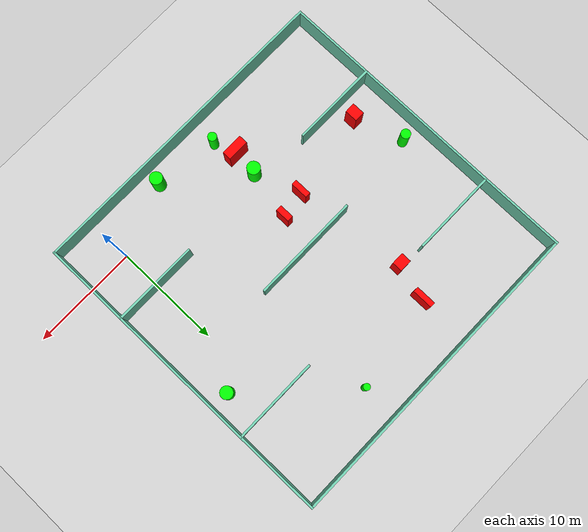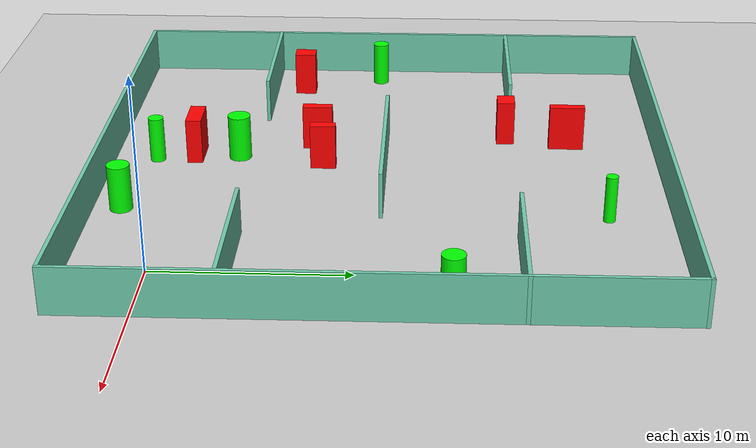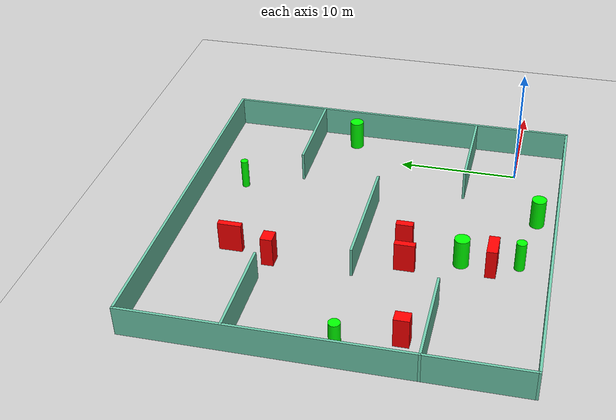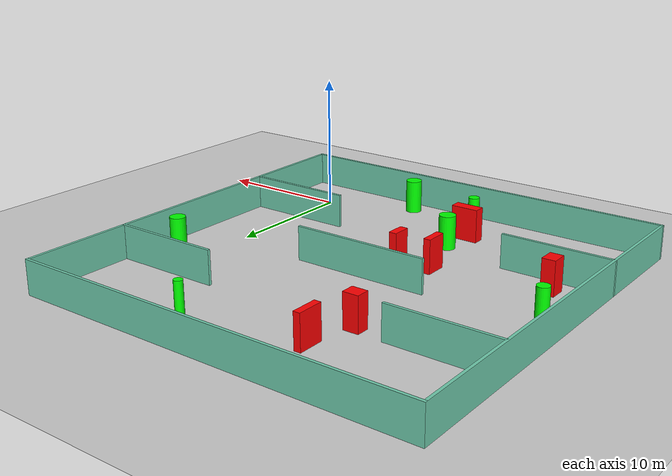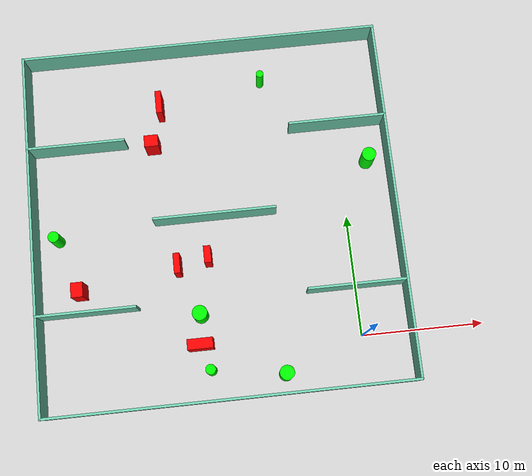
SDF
<sdf version="1.7">
 <world name="default">
  <light name="sun" type="directional">
   <pose>0 0 10 0 -0 0</pose>
   <diffuse>0.8 0.8 0.8 1</diffuse>
   <specular>0.2 0.2 0.2 1</specular>
   <attenuation>
    <range>1000</range>
    <constant>0.9</constant>
    <linear>0.01</linear>
    <quadratic>0.001</quadratic>
   </attenuation>
   <direction>-0.5 0.1 -0.9</direction>
   <spot><inner_angle>0</inner_angle><outer_angle>0</outer_angle><falloff>0</falloff></spot>
  </light>
  <model name="ground_plane">
   <static>1</static>
   <link name="link">
    <collision name="collision">
     <geometry><plane><normal>0 0 1</normal><size>100 100</size></plane></geometry>
     <surface>
      <contact><collide_bitmask>65535</collide_bitmask></contact>
      <friction><ode><mu>100</mu><mu2>50</mu2></ode></friction>
     </surface>
    </collision>
    <visual name="visual">
     <cast_shadows>0</cast_shadows>
     <geometry><plane><normal>0 0 1</normal><size>100 100</size></plane></geometry>
     <material>
      <script><uri>file://media/materials/scripts/gazebo.material</uri><name>Gazebo/Grey</name></script>
     </material>
    </visual>
   </link>
  </model>
  <gravity>0 0 -9.8</gravity>
  <magnetic_field>6e-06 2.3e-05 -4.2e-05</magnetic_field>
  <atmosphere type="adiabatic"/>
  <physics type="ode">
   <max_step_size>0.001</max_step_size>
   <real_time_factor>1</real_time_factor>
   <real_time_update_rate>1000</real_time_update_rate>
  </physics>
  <scene><ambient>0.4 0.4 0.4 1</ambient><background>0.7 0.7 0.7 1</background><shadows>1</shadows></scene>
  <spherical_coordinates>
   <surface_model>EARTH_WGS84</surface_model>
   <latitude_deg>0</latitude_deg>
   <longitude_deg>0</longitude_deg>
   <elevation>0</elevation>
   <heading_deg>0</heading_deg>
  </spherical_coordinates>
  <model name="my_base_walls">
   <link name="Wall_10">
    <collision name="Wall_10_Collision">
     <geometry><box><size>8.2 0.2 2.5</size></box></geometry>
     <pose>0 0 1.25 0 -0 0</pose>
    </collision>
    <visual name="Wall_10_Visual">
     <pose>0 0 1.25 0 -0 0</pose>
     <geometry><box><size>8.2 0.2 2.5</size></box></geometry>
     <material>
      <script><uri>file://media/materials/scripts/gazebo.material</uri><name>Gazebo/Grey</name></script>
      <ambient>0.435294 0.796078 0.67451 1</ambient>
     </material>
     <meta><layer>0</layer></meta>
    </visual>
    <pose>-11 -7 0 0 -0 0</pose>
   </link>
   <link name="Wall_12">
    <collision name="Wall_12_Collision">
     <geometry><box><size>8.2 0.2 2.5</size></box></geometry>
     <pose>0 0 1.25 0 -0 0</pose>
    </collision>
    <visual name="Wall_12_Visual">
     <pose>0 0 1.25 0 -0 0</pose>
     <geometry><box><size>8.2 0.2 2.5</size></box></geometry>
     <material>
      <script><uri>file://media/materials/scripts/gazebo.material</uri><name>Gazebo/Grey</name></script>
      <ambient>0.435294 0.796078 0.67451 1</ambient>
     </material>
     <meta><layer>0</layer></meta>
    </visual>
    <pose>-11 7 0 0 -0 0</pose>
   </link>
   <link name="Wall_14">
    <collision name="Wall_14_Collision">
     <geometry><box><size>8.2 0.2 2.5</size></box></geometry>
     <pose>0 0 1.25 0 -0 0</pose>
    </collision>
    <visual name="Wall_14_Visual">
     <pose>0 0 1.25 0 -0 0</pose>
     <geometry><box><size>8.2 0.2 2.5</size></box></geometry>
     <material>
      <script><uri>file://media/materials/scripts/gazebo.material</uri><name>Gazebo/Grey</name></script>
      <ambient>0.435294 0.796078 0.67451 1</ambient>
     </material>
     <meta><layer>0</layer></meta>
    </visual>
    <pose>11 7 0 0 -0 3.14159</pose>
   </link>
   <link name="Wall_16">
    <collision name="Wall_16_Collision">
     <geometry><box><size>10.2 0.2 2.5</size></box></geometry>
     <pose>0 0 1.25 0 -0 0</pose>
    </collision>
    <visual name="Wall_16_Visual">
     <pose>0 0 1.25 0 -0 0</pose>
     <geometry><box><size>10.2 0.2 2.5</size></box></geometry>
     <material>
      <script><uri>file://media/materials/scripts/gazebo.material</uri><name>Gazebo/Grey</name></script>
      <ambient>0.435294 0.796078 0.67451 1</ambient>
     </material>
     <meta><layer>0</layer></meta>
    </visual>
    <pose>0 0 0 0 -0 3.14159</pose>
   </link>
   <link name="Wall_2">
    <collision name="Wall_2_Collision">
     <geometry><box><size>30.2 0.2 2.5</size></box></geometry>
     <pose>0 0 1.25 0 -0 0</pose>
    </collision>
    <visual name="Wall_2_Visual">
     <pose>0 0 1.25 0 -0 0</pose>
     <geometry><box><size>30.2 0.2 2.5</size></box></geometry>
     <material>
      <script><uri>file://media/materials/scripts/gazebo.material</uri><name>Gazebo/Grey</name></script>
      <ambient>0.435294 0.796078 0.67451 1</ambient>
     </material>
     <meta><layer>0</layer></meta>
    </visual>
    <pose>0 -15 0 0 -0 3.14159</pose>
   </link>
   <link name="Wall_3">
    <collision name="Wall_3_Collision">
     <geometry><box><size>30.2 0.2 2.5</size></box></geometry>
     <pose>0 0 1.25 0 -0 0</pose>
    </collision>
    <visual name="Wall_3_Visual">
     <pose>0 0 1.25 0 -0 0</pose>
     <geometry><box><size>30.2 0.2 2.5</size></box></geometry>
     <material>
      <script><uri>file://media/materials/scripts/gazebo.material</uri><name>Gazebo/Grey</name></script>
      <ambient>0.435294 0.796078 0.67451 1</ambient>
     </material>
     <meta><layer>0</layer></meta>
    </visual>
    <pose>-15 0 0 0 -0 1.5708</pose>
   </link>
   <link name="Wall_4">
    <collision name="Wall_4_Collision">
     <geometry><box><size>30.2 0.2 2.5</size></box></geometry>
     <pose>0 0 1.25 0 -0 0</pose>
    </collision>
    <visual name="Wall_4_Visual">
     <pose>0 0 1.25 0 -0 0</pose>
     <geometry><box><size>30.2 0.2 2.5</size></box></geometry>
     <material>
      <script><uri>file://media/materials/scripts/gazebo.material</uri><name>Gazebo/Grey</name></script>
      <ambient>0.435294 0.796078 0.67451 1</ambient>
     </material>
     <meta><layer>0</layer></meta>
    </visual>
    <pose>0 15 0 0 -0 0</pose>
   </link>
   <link name="Wall_6">
    <collision name="Wall_6_Collision">
     <geometry><box><size>30.2 0.2 2.5</size></box></geometry>
     <pose>0 0 1.25 0 -0 0</pose>
    </collision>
    <visual name="Wall_6_Visual">
     <pose>0 0 1.25 0 -0 0</pose>
     <geometry><box><size>30.2 0.2 2.5</size></box></geometry>
     <material>
      <script><uri>file://media/materials/scripts/gazebo.material</uri><name>Gazebo/Grey</name></script>
      <ambient>0.435294 0.796078 0.67451 1</ambient>
     </material>
     <meta><layer>0</layer></meta>
    </visual>
    <pose>15 0 0 0 -0 1.5708</pose>
   </link>
   <link name="Wall_8">
    <collision name="Wall_8_Collision">
     <geometry><box><size>8.2 0.2 2.5</size></box></geometry>
     <pose>0 0 1.25 0 -0 0</pose>
    </collision>
    <visual name="Wall_8_Visual">
     <pose>0 0 1.25 0 -0 0</pose>
     <geometry><box><size>8.2 0.2 2.5</size></box></geometry>
     <material>
      <script><uri>file://media/materials/scripts/gazebo.material</uri><name>Gazebo/Grey</name></script>
      <ambient>0.435294 0.796078 0.67451 1</ambient>
     </material>
     <meta><layer>0</layer></meta>
    </visual>
    <pose>11 -7 0 0 -0 3.14159</pose>
   </link>
   <static>1</static>
   <pose>-11 11 0 0 -0 0</pose>
  </model>
  <model name="cylinder1">
   <static>1</static>
   <link name="link">
    <inertial>
     <mass>1</mass>
     <inertia><ixx>0.5</ixx><ixy>0</ixy><ixz>0</ixz><iyy>0.5</iyy><iyz>0</iyz><izz>1</izz></inertia>
    </inertial>
    <collision name="collision">
     <geometry><cylinder><radius>0.3113652153544478</radius><length>2.5</length></cylinder></geometry>
    </collision>
    <visual name="visual">
     <geometry><cylinder><radius>0.3113652153544478</radius><length>2.5</length></cylinder></geometry>
     <material>
      <ambient>0 1 0 1</ambient>
      <diffuse>0 1 0 1</diffuse>
      <specular>0.1 0.1 0.1 1</specular>
      <emissive>0 0 0 0</emissive>
     </material>
    </visual>
   </link>
   <pose>-6.060534769899782 22.63479666763652 1.25 0 0 0</pose>
  </model>
  <model name="cylinder2">
   <static>1</static>
   <link name="link">
    <inertial>
     <mass>1</mass>
     <inertia><ixx>0.5</ixx><ixy>0</ixy><ixz>0</ixz><iyy>0.5</iyy><iyz>0</iyz><izz>1</izz></inertia>
    </inertial>
    <collision name="collision">
     <geometry><cylinder><radius>0.6148683543914919</radius><length>2.5</length></cylinder></geometry>
    </collision>
    <visual name="visual">
     <geometry><cylinder><radius>0.6148683543914919</radius><length>2.5</length></cylinder></geometry>
     <material>
      <ambient>0 1 0 1</ambient>
      <diffuse>0 1 0 1</diffuse>
      <specular>0.1 0.1 0.1 1</specular>
      <emissive>0 0 0 0</emissive>
     </material>
    </visual>
   </link>
   <pose>-12.922961902608925 2.9542684425003696 1.25 0 0 0</pose>
  </model>
  <model name="cylinder3">
   <static>1</static>
   <link name="link">
    <inertial>
     <mass>1</mass>
     <inertia><ixx>0.5</ixx><ixy>0</ixy><ixz>0</ixz><iyy>0.5</iyy><iyz>0</iyz><izz>1</izz></inertia>
    </inertial>
    <collision name="collision">
     <geometry><cylinder><radius>0.5971857987931986</radius><length>2.5</length></cylinder></geometry>
    </collision>
    <visual name="visual">
     <geometry><cylinder><radius>0.5971857987931986</radius><length>2.5</length></cylinder></geometry>
     <material>
      <ambient>0 1 0 1</ambient>
      <diffuse>0 1 0 1</diffuse>
      <specular>0.1 0.1 0.1 1</specular>
      <emissive>0 0 0 0</emissive>
     </material>
    </visual>
   </link>
   <pose>-6.485759098713611 -2.4314746217546914 1.25 0 0 0</pose>
  </model>
  <model name="cylinder4">
   <static>1</static>
   <link name="link">
    <inertial>
     <mass>1</mass>
     <inertia><ixx>0.5</ixx><ixy>0</ixy><ixz>0</ixz><iyy>0.5</iyy><iyz>0</iyz><izz>1</izz></inertia>
    </inertial>
    <collision name="collision">
     <geometry><cylinder><radius>0.4150110255729506</radius><length>2.5</length></cylinder></geometry>
    </collision>
    <visual name="visual">
     <geometry><cylinder><radius>0.4150110255729506</radius><length>2.5</length></cylinder></geometry>
     <material>
      <ambient>0 1 0 1</ambient>
      <diffuse>0 1 0 1</diffuse>
      <specular>0.1 0.1 0.1 1</specular>
      <emissive>0 0 0 0</emissive>
     </material>
    </visual>
   </link>
   <pose>-12.445078275449948 -1.5610139726321792 1.25 0 0 0</pose>
  </model>
  <model name="cylinder5">
   <static>1</static>
   <link name="link">
    <inertial>
     <mass>1</mass>
     <inertia><ixx>0.5</ixx><ixy>0</ixy><ixz>0</ixz><iyy>0.5</iyy><iyz>0</iyz><izz>1</izz></inertia>
    </inertial>
    <collision name="collision">
     <geometry><cylinder><radius>0.4530270677038694</radius><length>2.5</length></cylinder></geometry>
    </collision>
    <visual name="visual">
     <geometry><cylinder><radius>0.4530270677038694</radius><length>2.5</length></cylinder></geometry>
     <material>
      <ambient>0 1 0 1</ambient>
      <diffuse>0 1 0 1</diffuse>
      <specular>0.1 0.1 0.1 1</specular>
      <emissive>0 0 0 0</emissive>
     </material>
    </visual>
   </link>
   <pose>-24.2059004913497 10.326252602464951 1.25 0 0 0</pose>
  </model>
  <model name="cylinder6">
   <static>1</static>
   <link name="link">
    <inertial>
     <mass>1</mass>
     <inertia><ixx>0.5</ixx><ixy>0</ixy><ixz>0</ixz><iyy>0.5</iyy><iyz>0</iyz><izz>1</izz></inertia>
    </inertial>
    <collision name="collision">
     <geometry><cylinder><radius>0.5807161001782399</radius><length>2.5</length></cylinder></geometry>
    </collision>
    <visual name="visual">
     <geometry><cylinder><radius>0.5807161001782399</radius><length>2.5</length></cylinder></geometry>
     <material>
      <ambient>0 1 0 1</ambient>
      <diffuse>0 1 0 1</diffuse>
      <specular>0.1 0.1 0.1 1</specular>
      <emissive>0 0 0 0</emissive>
     </material>
    </visual>
   </link>
   <pose>2.2495234760755842 14.64350296832701 1.25 0 0 0</pose>
  </model>
  <model name="box1">
   <static>1</static>
   <link name="link">
    <inertial>
     <mass>1</mass>
     <inertia><ixx>0.083</ixx><ixy>0</ixy><ixz>0</ixz><iyy>0.083</iyy><iyz>0</iyz><izz>0.083</izz></inertia>
    </inertial>
    <collision name="collision">
     <geometry><box><size>0.5168756958652019 1.6459948002328257 2.5</size></box></geometry>
    </collision>
    <visual name="visual">
     <geometry><box><size>0.5168756958652019 1.6459948002328257 2.5</size></box></geometry>
     <material>
      <ambient>1 0 0 1</ambient>
      <diffuse>1 0 0 1</diffuse>
      <specular>0.1 0.1 0.1 1</specular>
      <emissive>0 0 0 0</emissive>
     </material>
    </visual>
    <sensor name="my_contact" type="contact">
     <contact><collision>box_collision</collision><topic>__default_topic__</topic></contact>
    </sensor>
   </link>
   <pose>-14.420990130577618 7.160986154353038 1.25 0 0 0</pose>
  </model>
  <model name="box2">
   <static>1</static>
   <link name="link">
    <inertial>
     <mass>1</mass>
     <inertia><ixx>0.083</ixx><ixy>0</ixy><ixz>0</ixz><iyy>0.083</iyy><iyz>0</iyz><izz>0.083</izz></inertia>
    </inertial>
    <collision name="collision">
     <geometry><box><size>0.5815592795281355 1.3771854758074749 2.5</size></box></geometry>
    </collision>
    <visual name="visual">
     <geometry><box><size>0.5815592795281355 1.3771854758074749 2.5</size></box></geometry>
     <material>
      <ambient>1 0 0 1</ambient>
      <diffuse>1 0 0 1</diffuse>
      <specular>0.1 0.1 0.1 1</specular>
      <emissive>0 0 0 0</emissive>
     </material>
    </visual>
    <sensor name="my_contact" type="contact">
     <contact><collision>box_collision</collision><topic>__default_topic__</topic></contact>
    </sensor>
   </link>
   <pose>-11.887097727315416 7.63560752626749 1.25 0 0 0</pose>
  </model>
  <model name="box3">
   <static>1</static>
   <link name="link">
    <inertial>
     <mass>1</mass>
     <inertia><ixx>0.083</ixx><ixy>0</ixy><ixz>0</ixz><iyy>0.083</iyy><iyz>0</iyz><izz>0.083</izz></inertia>
    </inertial>
    <collision name="collision">
     <geometry><box><size>1.1566557151448773 0.9711542239514033 2.5</size></box></geometry>
    </collision>
    <visual name="visual">
     <geometry><box><size>1.1566557151448773 0.9711542239514033 2.5</size></box></geometry>
     <material>
      <ambient>1 0 0 1</ambient>
      <diffuse>1 0 0 1</diffuse>
      <specular>0.1 0.1 0.1 1</specular>
      <emissive>0 0 0 0</emissive>
     </material>
    </visual>
    <sensor name="my_contact" type="contact">
     <contact><collision>box_collision</collision><topic>__default_topic__</topic></contact>
    </sensor>
   </link>
   <pose>-15.694359910266815 17.666949808413754 1.25 0 0 0</pose>
  </model>
  <model name="box4">
   <static>1</static>
   <link name="link">
    <inertial>
     <mass>1</mass>
     <inertia><ixx>0.083</ixx><ixy>0</ixy><ixz>0</ixz><iyy>0.083</iyy><iyz>0</iyz><izz>0.083</izz></inertia>
    </inertial>
    <collision name="collision">
     <geometry><box><size>0.5022976051488042 1.9233765468914708 2.5</size></box></geometry>
    </collision>
    <visual name="visual">
     <geometry><box><size>0.5022976051488042 1.9233765468914708 2.5</size></box></geometry>
     <material>
      <ambient>1 0 0 1</ambient>
      <diffuse>1 0 0 1</diffuse>
      <specular>0.1 0.1 0.1 1</specular>
      <emissive>0 0 0 0</emissive>
     </material>
    </visual>
    <sensor name="my_contact" type="contact">
     <contact><collision>box_collision</collision><topic>__default_topic__</topic></contact>
    </sensor>
   </link>
   <pose>-14.809879826626927 21.035245634583706 1.25 0 0 0</pose>
  </model>
  <model name="box5">
   <static>1</static>
   <link name="link">
    <inertial>
     <mass>1</mass>
     <inertia><ixx>0.083</ixx><ixy>0</ixy><ixz>0</ixz><iyy>0.083</iyy><iyz>0</iyz><izz>0.083</izz></inertia>
    </inertial>
    <collision name="collision">
     <geometry><box><size>0.9742278861045387 1.2067277448240328 2.5</size></box></geometry>
    </collision>
    <visual name="visual">
     <geometry><box><size>0.9742278861045387 1.2067277448240328 2.5</size></box></geometry>
     <material>
      <ambient>1 0 0 1</ambient>
      <diffuse>1 0 0 1</diffuse>
      <specular>0.1 0.1 0.1 1</specular>
      <emissive>0 0 0 0</emissive>
     </material>
    </visual>
    <sensor name="my_contact" type="contact">
     <contact><collision>box_collision</collision><topic>__default_topic__</topic></contact>
    </sensor>
   </link>
   <pose>-22.57733414457216 5.8144646296915585 1.25 0 0 0</pose>
  </model>
  <model name="box6">
   <static>1</static>
   <link name="link">
    <inertial>
     <mass>1</mass>
     <inertia><ixx>0.083</ixx><ixy>0</ixy><ixz>0</ixz><iyy>0.083</iyy><iyz>0</iyz><izz>0.083</izz></inertia>
    </inertial>
    <collision name="collision">
     <geometry><box><size>2.0647353600473055 0.846162379731999 2.5</size></box></geometry>
    </collision>
    <visual name="visual">
     <geometry><box><size>2.0647353600473055 0.846162379731999 2.5</size></box></geometry>
     <material>
      <ambient>1 0 0 1</ambient>
      <diffuse>1 0 0 1</diffuse>
      <specular>0.1 0.1 0.1 1</specular>
      <emissive>0 0 0 0</emissive>
     </material>
    </visual>
    <sensor name="my_contact" type="contact">
     <contact><collision>box_collision</collision><topic>__default_topic__</topic></contact>
    </sensor>
   </link>
   <pose>-13.107496539198323 0.5414757960628735 1.25 0 0 0</pose>
  </model>
 </world>
</sdf>
